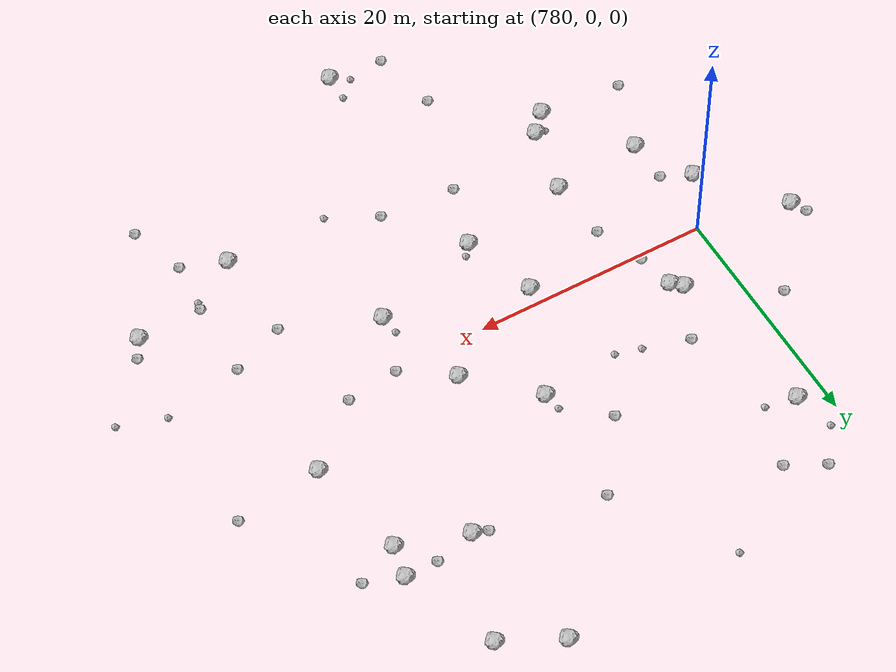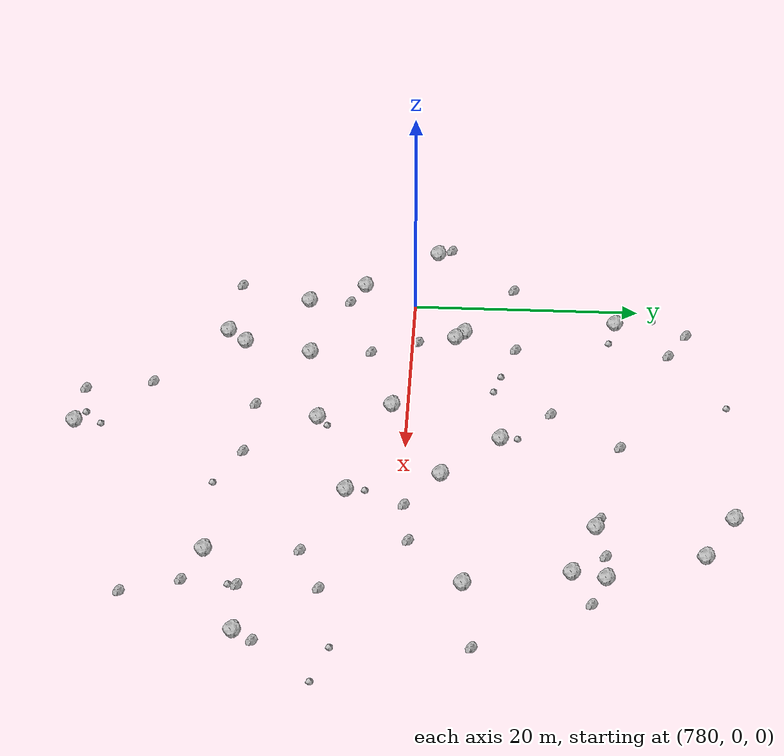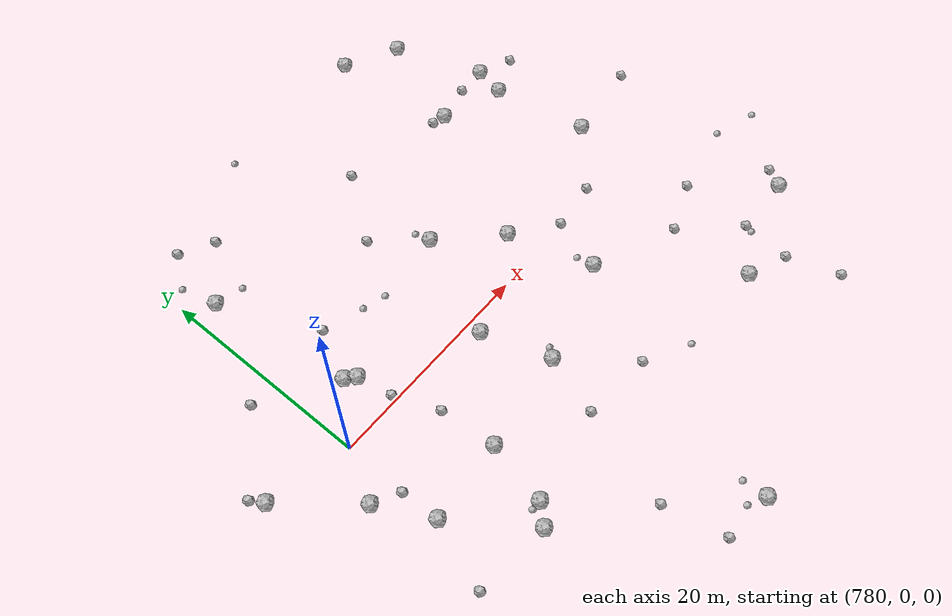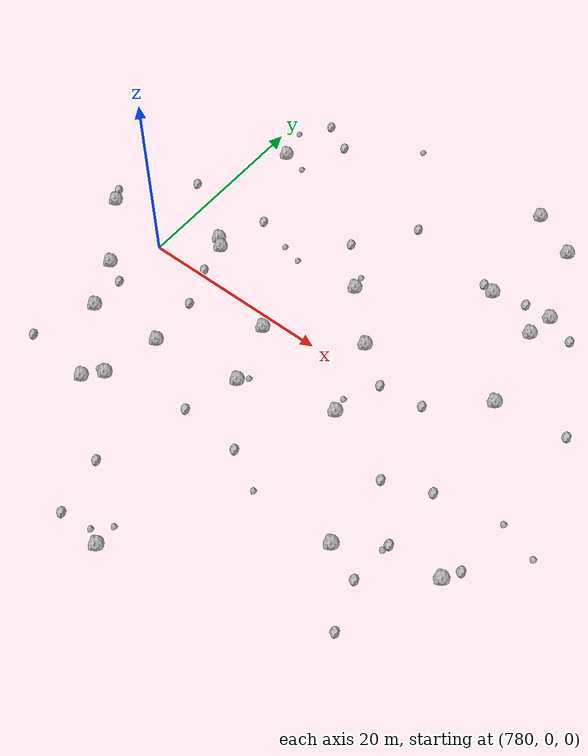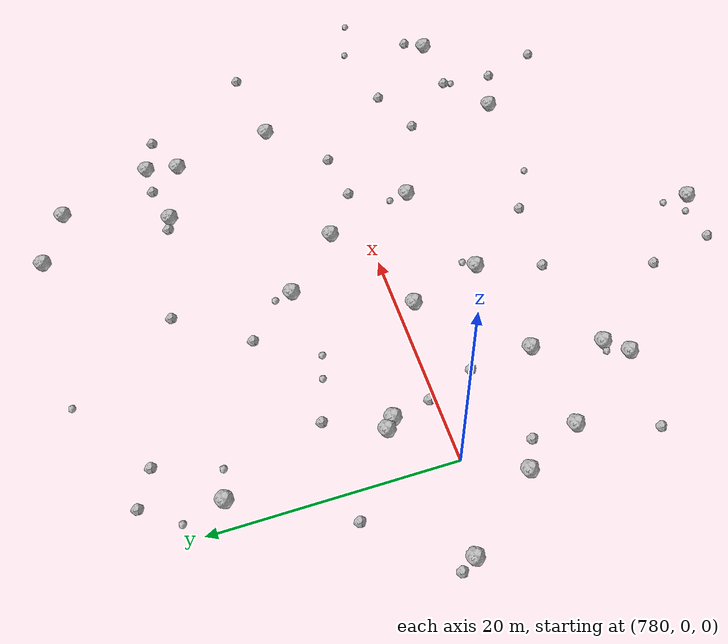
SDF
<sdf version="1.6">
 <world name="default">
  <include><uri>model://sun</uri></include>
  <model name="rock1_20_4">
   <include><uri>model://rock1</uri><pose>785.0633286238299 3.773448542927916 0.5 0 0 0</pose></include>
  </model>
  <model name="rock1_20_5">
   <include><uri>model://rock1</uri><pose>786.4291470052275 -14.82549201980984 0.5 0 0 0</pose></include>
  </model>
  <model name="rock1_20_6">
   <include><uri>model://rock1</uri><pose>814.3915436820182 -15.758329331694013 0.5 0 0 0</pose></include>
  </model>
  <model name="rock1_20_7">
   <include><uri>model://rock1</uri><pose>796.8915065429527 -7.691024273431864 0.5 0 0 0</pose></include>
  </model>
  <model name="rock1_20_8">
   <include><uri>model://rock1</uri><pose>787.7232206658227 -8.978432128197948 0.5 0 0 0</pose></include>
  </model>
  <model name="rock1_20_9">
   <include><uri>model://rock1</uri><pose>784.1949680819517 4.541079096540535 0.5 0 0 0</pose></include>
  </model>
  <model name="rock1_20_10">
   <include><uri>model://rock1</uri><pose>780.0678795474613 -9.57589732467006 0.5 0 0 0</pose></include>
  </model>
  <model name="rock1_20_11">
   <include><uri>model://rock1</uri><pose>806.3791547489532 -4.711100378186902 0.5 0 0 0</pose></include>
  </model>
  <model name="rock1_20_12">
   <include><uri>model://rock1</uri><pose>784.8956595305663 -16.48038905044158 0.5 0 0 0</pose></include>
  </model>
  <model name="rock1_20_13">
   <include><uri>model://rock1</uri><pose>808.6260248954214 27.461460629928446 0.5 0 0 0</pose></include>
  </model>
  <model name="rock1_20_14">
   <include><uri>model://rock1</uri><pose>794.8890443850382 -1.3998307889751551 0.5 0 0 0</pose></include>
  </model>
  <model name="rock1_20_15">
   <include><uri>model://rock1</uri><pose>798.310450171344 -28.51183161103502 0.5 0 0 0</pose></include>
  </model>
  <model name="rock1_20_16">
   <include><uri>model://rock1</uri><pose>799.0680390633112 8.036635908127622 0.5 0 0 0</pose></include>
  </model>
  <model name="rock1_20_17">
   <include><uri>model://rock1</uri><pose>816.3890355029647 16.889309297207134 0.5 0 0 0</pose></include>
  </model>
  <model name="rock1_20_18">
   <include><uri>model://rock1</uri><pose>810.2113463095193 16.06858143381124 0.5 0 0 0</pose></include>
  </model>
  <model name="rock1_20_19">
   <include><uri>model://rock1</uri><pose>777.5367040292746 -4.6419413254425805 0.5 0 0 0</pose></include>
  </model>
  <model name="rock1_20_20">
   <include><uri>model://rock1</uri><pose>823.8826667595041 -12.525879608890197 0.5 0 0 0</pose></include>
  </model>
  <model name="rock1_20_21">
   <include><uri>model://rock1</uri><pose>813.4389209928988 24.968912397433755 0.5 0 0 0</pose></include>
  </model>
  <model name="rock1_20_22">
   <include><uri>model://rock1</uri><pose>782.3360935779507 17.964906974975705 0.5 0 0 0</pose></include>
  </model>
  <model name="rock1_20_23">
   <include><uri>model://rock1</uri><pose>772.2838683858934 1.7938978337814788 0.5 0 0 0</pose></include>
  </model>
  <model name="rock1_20_24">
   <include><uri>model://rock1</uri><pose>804.0023340594951 3.1240942865479795 0.5 0 0 0</pose></include>
  </model>
  <model name="rock1_20_25">
   <include><uri>model://rock1</uri><pose>817.5251189432402 5.354158478854792 0.5 0 0 0</pose></include>
  </model>
  <model name="rock1_20_26">
   <include><uri>model://rock1</uri><pose>815.8481417732265 14.117332997538476 0.5 0 0 0</pose></include>
  </model>
  <model name="rock2_20_0">
   <include><uri>model://rock2</uri><pose>818.5084521837955 -6.083554473865025 0.3 0 0 0</pose></include>
  </model>
  <model name="rock2_20_1">
   <include><uri>model://rock2</uri><pose>817.9959145856035 -17.202297308984583 0.3 0 0 0</pose></include>
  </model>
  <model name="rock2_20_2">
   <include><uri>model://rock2</uri><pose>777.7876664366544 -15.830066710580862 0.3 0 0 0</pose></include>
  </model>
  <model name="rock2_20_3">
   <include><uri>model://rock2</uri><pose>813.6080042235893 16.877034025851152 0.3 0 0 0</pose></include>
  </model>
  <model name="rock2_20_4">
   <include><uri>model://rock2</uri><pose>824.8429004099906 6.29912713136693 0.3 0 0 0</pose></include>
  </model>
  <model name="rock2_20_5">
   <include><uri>model://rock2</uri><pose>808.9557558520212 16.454877021650375 0.3 0 0 0</pose></include>
  </model>
  <model name="rock2_20_6">
   <include><uri>model://rock2</uri><pose>785.6608841276718 0.5154310560742168 0.3 0 0 0</pose></include>
  </model>
  <model name="rock2_20_7">
   <include><uri>model://rock2</uri><pose>786.6492117369935 22.640105620159773 0.3 0 0 0</pose></include>
  </model>
  <model name="rock2_20_8">
   <include><uri>model://rock2</uri><pose>818.4050174172166 -12.682704361916247 0.3 0 0 0</pose></include>
  </model>
  <model name="rock2_20_9">
   <include><uri>model://rock2</uri><pose>787.2661657951497 -3.5924002563052184 0.3 0 0 0</pose></include>
  </model>
  <model name="rock2_20_10">
   <include><uri>model://rock2</uri><pose>814.0072136504976 -7.919452935165626 0.3 0 0 0</pose></include>
  </model>
  <model name="rock2_20_11">
   <include><uri>model://rock2</uri><pose>792.3689455386052 -22.325342023093988 0.3 0 0 0</pose></include>
  </model>
  <model name="rock2_20_12">
   <include><uri>model://rock2</uri><pose>801.5718580782511 -13.67176662609823 0.3 0 0 0</pose></include>
  </model>
  <model name="rock2_20_13">
   <include><uri>model://rock2</uri><pose>795.357387173533 12.33781181509265 0.3 0 0 0</pose></include>
  </model>
  <model name="rock2_20_14">
   <include><uri>model://rock2</uri><pose>799.6282012249752 18.21899409370448 0.3 0 0 0</pose></include>
  </model>
  <model name="rock2_20_15">
   <include><uri>model://rock2</uri><pose>777.4968663272078 8.870378765906082 0.3 0 0 0</pose></include>
  </model>
  <model name="rock2_20_16">
   <include><uri>model://rock2</uri><pose>812.3899289704598 0.7898570947933905 0.3 0 0 0</pose></include>
  </model>
  <model name="rock2_20_17">
   <include><uri>model://rock2</uri><pose>779.9111037944429 -5.870362691499189 0.3 0 0 0</pose></include>
  </model>
  <model name="rock2_20_18">
   <include><uri>model://rock2</uri><pose>819.3946199820633 15.727263944935466 0.3 0 0 0</pose></include>
  </model>
  <model name="rock2_20_19">
   <include><uri>model://rock2</uri><pose>793.6128072189437 -28.096022483239768 0.3 0 0 0</pose></include>
  </model>
  <model name="rock2_20_20">
   <include><uri>model://rock2</uri><pose>786.3718506212865 9.160942562649744 0.3 0 0 0</pose></include>
  </model>
  <model name="rock2_20_21">
   <include><uri>model://rock2</uri><pose>783.5929030084033 24.270901553150523 0.3 0 0 0</pose></include>
  </model>
  <model name="rock2_20_22">
   <include><uri>model://rock2</uri><pose>824.8143162937217 -10.878292168724816 0.3 0 0 0</pose></include>
  </model>
  <model name="rock2_20_23">
   <include><uri>model://rock2</uri><pose>819.5721237880773 -21.99216598671734 0.3 0 0 0</pose></include>
  </model>
  <model name="rock2_20_24">
   <include><uri>model://rock2</uri><pose>795.1360953156956 -13.162562460461348 0.3 0 0 0</pose></include>
  </model>
  <model name="rock2_20_25">
   <include><uri>model://rock2</uri><pose>771.5221485688695 3.0588370975835275 0.3 0 0 0</pose></include>
  </model>
  <model name="rock2_20_26">
   <include><uri>model://rock2</uri><pose>807.9231182266537 0.24001548516976712 0.3 0 0 0</pose></include>
  </model>
  <model name="rock3_20_0">
   <include><uri>model://rock3</uri><pose>796.7430617864188 -27.691536191654457 0.2 0 0 0</pose></include>
  </model>
  <model name="rock3_20_1">
   <include><uri>model://rock3</uri><pose>785.4941565615285 -14.79808938879012 0.2 0 0 0</pose></include>
  </model>
  <model name="rock3_20_2">
   <include><uri>model://rock3</uri><pose>825.169168000371 -4.806185471819212 0.2 0 0 0</pose></include>
  </model>
  <model name="rock3_20_3">
   <include><uri>model://rock3</uri><pose>818.2191716562965 -13.416848216093818 0.2 0 0 0</pose></include>
  </model>
  <model name="rock3_20_4">
   <include><uri>model://rock3</uri><pose>805.6154466814262 -15.87841062883308 0.2 0 0 0</pose></include>
  </model>
  <model name="rock3_20_5">
   <include><uri>model://rock3</uri><pose>798.7047327036969 9.501662192718676 0.2 0 0 0</pose></include>
  </model>
  <model name="rock3_20_6">
   <include><uri>model://rock3</uri><pose>781.4034012052557 21.310892749866774 0.2 0 0 0</pose></include>
  </model>
  <model name="rock3_20_7">
   <include><uri>model://rock3</uri><pose>797.5868735271627 -6.8203077301741715 0.2 0 0 0</pose></include>
  </model>
  <model name="rock3_20_8">
   <include><uri>model://rock3</uri><pose>793.6816228743921 27.43376102232525 0.2 0 0 0</pose></include>
  </model>
  <model name="rock3_20_9">
   <include><uri>model://rock3</uri><pose>829.0586591018094 -6.066651806460371 0.2 0 0 0</pose></include>
  </model>
  <model name="rock3_20_10">
   <include><uri>model://rock3</uri><pose>806.0710038594674 -3.1126696806741165 0.2 0 0 0</pose></include>
  </model>
  <model name="rock3_20_11">
   <include><uri>model://rock3</uri><pose>798.2241123768457 -26.238131823878156 0.2 0 0 0</pose></include>
  </model>
  <model name="rock3_20_12">
   <include><uri>model://rock3</uri><pose>784.8654766764529 17.372696612217226 0.2 0 0 0</pose></include>
  </model>
  <model name="rock3_20_13">
   <include><uri>model://rock3</uri><pose>792.2982283825759 7.314095284213884 0.2 0 0 0</pose></include>
  </model>
  <model name="rock3_20_14">
   <include><uri>model://rock3</uri><pose>790.1600347595071 7.918176157210958 0.2 0 0 0</pose></include>
  </model>
 </world>
</sdf>
